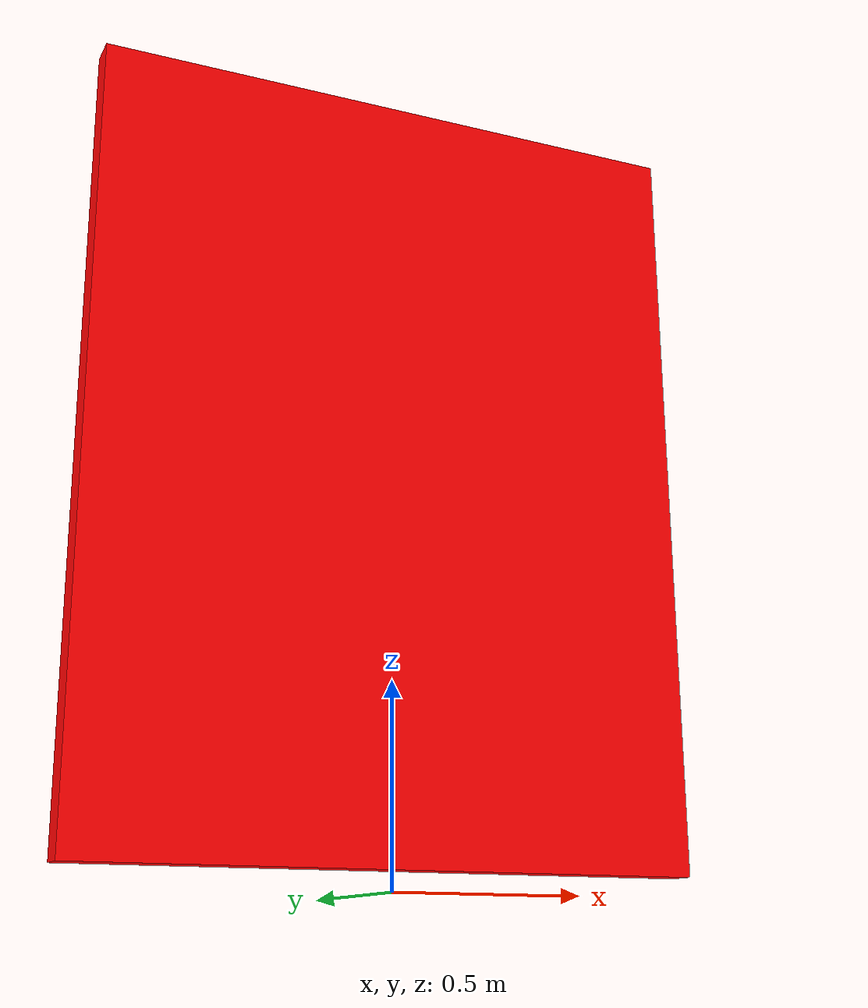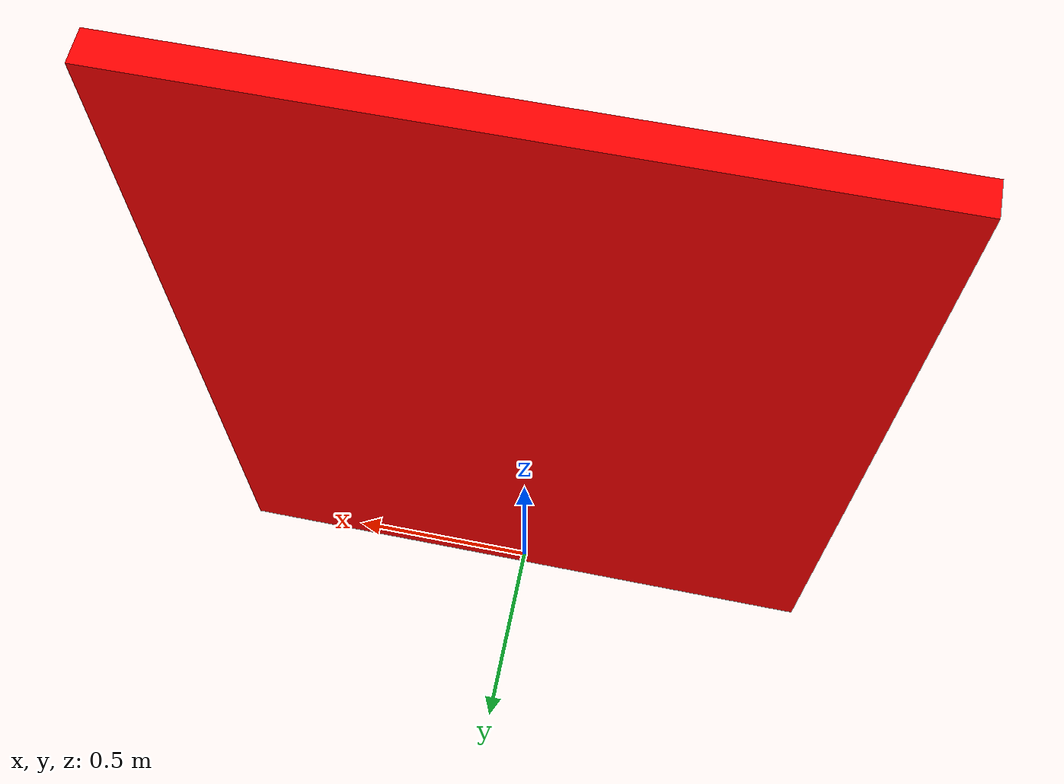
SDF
<?xml version="1.0"?>
<sdf version="1.6">
  <model name="door_closed">
    <static>true</static>

    <link name="link">
      <!-- metto la porta con il fondo a z=0 -->
      <pose>0 0 0 0 0 0</pose>

      <collision name="collision">
        <pose>0 0 1.05 0 0 0</pose>
        <geometry>
          <!-- width 1.20m, thickness 0.08m, height 2.10m -->
          <box><size>1.20 0.08 2.0</size></box>
        </geometry>
      </collision>

      <visual name="visual">
        <pose>0 0 1.05 0 0 0</pose>
        <geometry>
          <box><size>1.60 0.08 2.</size></box>
        </geometry>
        <material>
          <ambient>0.3 0.0 0.0 1</ambient>
          <diffuse>1.0 0.0 0.0 1</diffuse>
          <specular>0.2 0.2 0.2 1</specular>
          <emissive>0.0 0.0 0.0 1</emissive>
        </material>
      </visual>
    </link>
  </model>
</sdf>
